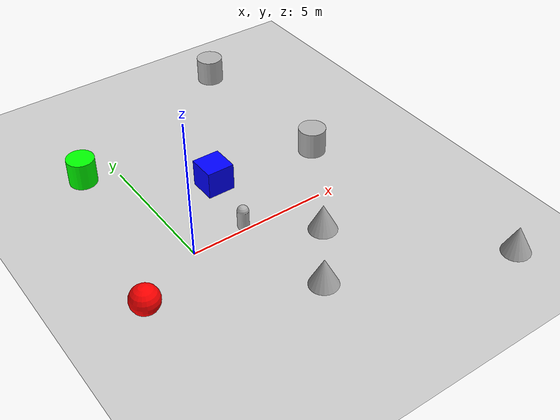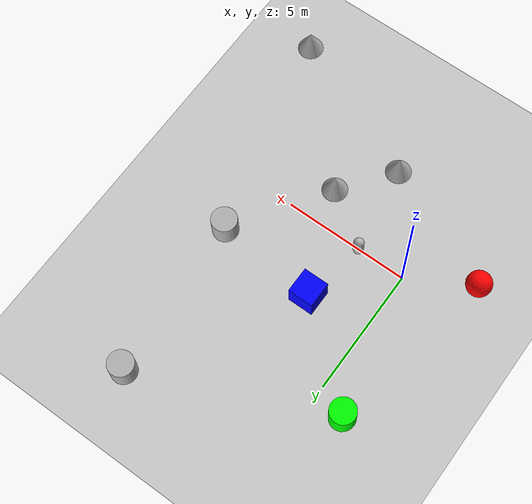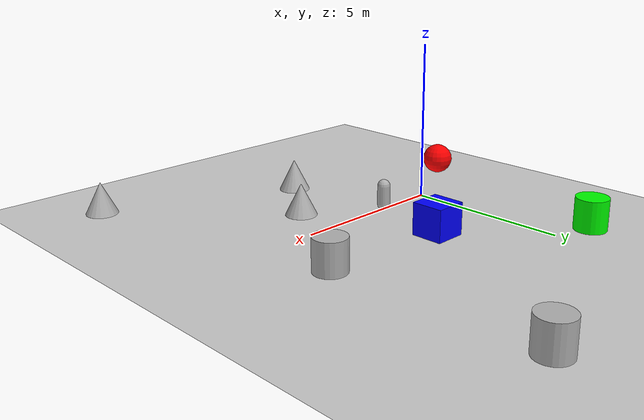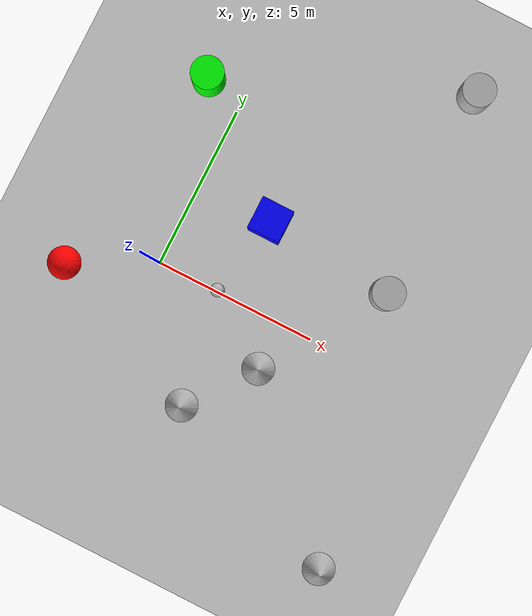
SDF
<sdf version='1.10'>
  <world name='empty'>
    <physics name='1ms' type='ignored'>
      <max_step_size>0.001</max_step_size>
      <real_time_factor>1</real_time_factor>
      <real_time_update_rate>1000</real_time_update_rate>
    </physics>
    <plugin name='gz::sim::systems::Physics' filename='gz-sim-physics-system'/>
    <plugin name='gz::sim::systems::UserCommands' filename='gz-sim-user-commands-system'/>
    <plugin name='gz::sim::systems::SceneBroadcaster' filename='gz-sim-scene-broadcaster-system'/>
    <plugin name='gz::sim::systems::Contact' filename='gz-sim-contact-system'/>
    <gravity>0 0 -9.8000000000000007</gravity>
    <magnetic_field>5.5644999999999998e-06 2.2875799999999999e-05 -4.2388400000000002e-05</magnetic_field>
    <atmosphere type='adiabatic'/>
    <scene>
      <ambient>0.400000006 0.400000006 0.400000006 1</ambient>
      <background>0.699999988 0.699999988 0.699999988 1</background>
      <shadows>true</shadows>
    </scene>
    <model name='ground_plane'>
      <static>true</static>
      <link name='link'>
        <collision name='collision'>
          <geometry>
            <plane>
              <normal>0 0 1</normal>
              <size>100 100</size>
            </plane>
          </geometry>
          <surface>
            <friction>
              <ode/>
            </friction>
            <bounce/>
            <contact/>
          </surface>
        </collision>
        <visual name='visual'>
          <geometry>
            <plane>
              <normal>0 0 1</normal>
              <size>100 100</size>
            </plane>
          </geometry>
          <material>
            <ambient>0.800000012 0.800000012 0.800000012 1</ambient>
            <diffuse>0.800000012 0.800000012 0.800000012 1</diffuse>
            <specular>0.800000012 0.800000012 0.800000012 1</specular>
          </material>
        </visual>
        <pose>0 0 0 0 0 0</pose>
        <inertial>
          <pose>0 0 0 0 0 0</pose>
          <mass>1</mass>
          <inertia>
            <ixx>1</ixx>
            <ixy>0</ixy>
            <ixz>0</ixz>
            <iyy>1</iyy>
            <iyz>0</iyz>
            <izz>1</izz>
          </inertia>
        </inertial>
        <enable_wind>false</enable_wind>
      </link>
      <pose>0 0 0 0 0 0</pose>
      <self_collide>false</self_collide>
    </model>
    <model name='box'>
      <pose>2.3746472880000624 2.5520127282460794 0.49999999980497606 1.0048033485058014e-21 -2.4640853465547739e-21 -3.9210766489770922e-22</pose>
      <link name='box_link'>
        <inertial>
          <inertia>
            <ixx>0.16666</ixx>
            <ixy>0</ixy>
            <ixz>0</ixz>
            <iyy>0.16666</iyy>
            <iyz>0</iyz>
            <izz>0.16666</izz>
          </inertia>
          <mass>1</mass>
          <pose>0 0 0 0 0 0</pose>
        </inertial>
        <collision name='box_collision'>
          <geometry>
            <box>
              <size>1 1 1</size>
            </box>
          </geometry>
          <surface>
            <friction>
              <ode/>
            </friction>
            <bounce/>
            <contact/>
          </surface>
        </collision>
        <visual name='box_visual'>
          <geometry>
            <box>
              <size>1 1 1</size>
            </box>
          </geometry>
          <material>
            <ambient>0 0 1 1</ambient>
            <diffuse>0 0 1 1</diffuse>
            <specular>1 1 1 1</specular>
          </material>
        </visual>
        <pose>0 0 0 0 0 0</pose>
        <enable_wind>false</enable_wind>
      </link>
      <static>false</static>
      <self_collide>false</self_collide>
    </model>
    <model name='sphere'>
      <pose>-2.4239743832122982 -1.2732651850426644 0.49999999980498194 0 0 0</pose>
      <link name='sphere_link'>
        <inertial>
          <inertia>
            <ixx>0.10000000000000001</ixx>
            <ixy>0</ixy>
            <ixz>0</ixz>
            <iyy>0.10000000000000001</iyy>
            <iyz>0</iyz>
            <izz>0.10000000000000001</izz>
          </inertia>
          <mass>1</mass>
          <pose>0 0 0 0 0 0</pose>
        </inertial>
        <collision name='sphere_collision'>
          <geometry>
            <sphere>
              <radius>0.5</radius>
            </sphere>
          </geometry>
          <surface>
            <friction>
              <ode/>
            </friction>
            <bounce/>
            <contact/>
          </surface>
        </collision>
        <visual name='sphere_visual'>
          <geometry>
            <sphere>
              <radius>0.5</radius>
            </sphere>
          </geometry>
          <material>
            <ambient>1 0 0 1</ambient>
            <diffuse>1 0 0 1</diffuse>
            <specular>1 1 1 1</specular>
          </material>
        </visual>
        <pose>0 0 0 0 0 0</pose>
        <enable_wind>false</enable_wind>
      </link>
      <static>false</static>
      <self_collide>false</self_collide>
    </model>
    <model name='cone'>
      <pose>4.0196614380365148 -1.4661534636176385 0.49999999992120586 2.2548609729036461e-12 -8.4123610003777442e-10 1.6328268967902902e-17</pose>
      <link name='cone_link'>
        <inertial>
          <inertia>
            <ixx>0.074999999999999997</ixx>
            <ixy>0</ixy>
            <ixz>0</ixz>
            <iyy>0.074999999999999997</iyy>
            <iyz>0</iyz>
            <izz>0.074999999999999997</izz>
          </inertia>
          <mass>1</mass>
          <pose>0 0 0 0 0 0</pose>
        </inertial>
        <collision name='cone_collision'>
          <geometry>
            <cone>
              <radius>0.5</radius>
              <length>1</length>
            </cone>
          </geometry>
          <surface>
            <friction>
              <ode/>
            </friction>
            <bounce/>
            <contact/>
          </surface>
        </collision>
        <visual name='cone_visual'>
          <geometry>
            <cone>
              <radius>0.5</radius>
              <length>1</length>
            </cone>
          </geometry>
          <material>
            <ambient>0.300000012 0.300000012 0.300000012 1</ambient>
            <diffuse>0.699999988 0.699999988 0.699999988 1</diffuse>
            <specular>1 1 1 1</specular>
          </material>
        </visual>
        <pose>0 0 0 0 0 0</pose>
        <enable_wind>false</enable_wind>
      </link>
      <static>false</static>
      <self_collide>false</self_collide>
    </model>
    <model name='cylinder'>
      <pose>-1.1715747332602389 5.4726880082503273 0.49999943207967634 -1.7794603002036371e-19 6.2534406298204228e-19 -6.0281473122715449e-21</pose>
      <link name='cylinder_link'>
        <inertial>
          <inertia>
            <ixx>0.14580000000000001</ixx>
            <ixy>0</ixy>
            <ixz>0</ixz>
            <iyy>0.14580000000000001</iyy>
            <iyz>0</iyz>
            <izz>0.125</izz>
          </inertia>
          <mass>1</mass>
          <pose>0 0 0 0 0 0</pose>
        </inertial>
        <collision name='cylinder_collision'>
          <geometry>
            <cylinder>
              <radius>0.5</radius>
              <length>1</length>
            </cylinder>
          </geometry>
          <surface>
            <friction>
              <ode/>
            </friction>
            <bounce/>
            <contact/>
          </surface>
        </collision>
        <visual name='cylinder_visual'>
          <geometry>
            <cylinder>
              <radius>0.5</radius>
              <length>1</length>
            </cylinder>
          </geometry>
          <material>
            <ambient>0 1 0 1</ambient>
            <diffuse>0 1 0 1</diffuse>
            <specular>1 1 1 1</specular>
          </material>
        </visual>
        <pose>0 0 0 0 0 0</pose>
        <enable_wind>false</enable_wind>
      </link>
      <static>false</static>
      <self_collide>false</self_collide>
    </model>
    <model name='cone_0'>
      <pose>2.4971681853694818 -3.4680923304422491 0.49999999992120586 2.254860979095879e-12 -8.4123610002770133e-10 1.6326767248231786e-17</pose>
      <link name='cone_link'>
        <inertial>
          <inertia>
            <ixx>0.074999999999999997</ixx>
            <ixy>0</ixy>
            <ixz>0</ixz>
            <iyy>0.074999999999999997</iyy>
            <iyz>0</iyz>
            <izz>0.074999999999999997</izz>
          </inertia>
          <mass>1</mass>
          <pose>0 0 0 0 0 0</pose>
        </inertial>
        <collision name='cone_collision'>
          <geometry>
            <cone>
              <radius>0.5</radius>
              <length>1</length>
            </cone>
          </geometry>
          <surface>
            <friction>
              <ode/>
            </friction>
            <bounce/>
            <contact/>
          </surface>
        </collision>
        <visual name='cone_visual'>
          <geometry>
            <cone>
              <radius>0.5</radius>
              <length>1</length>
            </cone>
          </geometry>
          <material>
            <ambient>0.300000012 0.300000012 0.300000012 1</ambient>
            <diffuse>0.699999988 0.699999988 0.699999988 1</diffuse>
            <specular>1 1 1 1</specular>
          </material>
        </visual>
        <pose>0 0 0 0 0 0</pose>
        <enable_wind>false</enable_wind>
      </link>
      <static>false</static>
      <self_collide>false</self_collide>
    </model>
    <model name='capsule'>
      <pose>1.9146063851341646 0.050714887617700093 0.49999999020000274 0 0 0</pose>
      <link name='capsule_link'>
        <inertial>
          <inertia>
            <ixx>0.074153999999999998</ixx>
            <ixy>0</ixy>
            <ixz>0</ixz>
            <iyy>0.074153999999999998</iyy>
            <iyz>0</iyz>
            <izz>0.018769000000000001</izz>
          </inertia>
          <mass>1</mass>
          <pose>0 0 0 0 0 0</pose>
        </inertial>
        <collision name='capsule_collision'>
          <geometry>
            <capsule>
              <radius>0.20000000000000001</radius>
              <length>0.59999999999999998</length>
            </capsule>
          </geometry>
          <surface>
            <friction>
              <ode/>
            </friction>
            <bounce/>
            <contact/>
          </surface>
        </collision>
        <visual name='capsule_visual'>
          <geometry>
            <capsule>
              <radius>0.20000000000000001</radius>
              <length>0.59999999999999998</length>
            </capsule>
          </geometry>
          <material>
            <ambient>0.300000012 0.300000012 0.300000012 1</ambient>
            <diffuse>0.699999988 0.699999988 0.699999988 1</diffuse>
            <specular>1 1 1 1</specular>
          </material>
        </visual>
        <pose>0 0 0 0 0 0</pose>
        <enable_wind>false</enable_wind>
      </link>
      <static>false</static>
      <self_collide>false</self_collide>
    </model>
    <model name='cylinder_0'>
      <pose>6.3694213085697573 2.2102483620514861 0.49999942638036005 3.0857583778038498e-19 3.7139836222223398e-19 -6.141993237134564e-21</pose>
      <link name='cylinder_link'>
        <inertial>
          <inertia>
            <ixx>0.14580000000000001</ixx>
            <ixy>0</ixy>
            <ixz>0</ixz>
            <iyy>0.14580000000000001</iyy>
            <iyz>0</iyz>
            <izz>0.125</izz>
          </inertia>
          <mass>1</mass>
          <pose>0 0 0 0 0 0</pose>
        </inertial>
        <collision name='cylinder_collision'>
          <geometry>
            <cylinder>
              <radius>0.5</radius>
              <length>1</length>
            </cylinder>
          </geometry>
          <surface>
            <friction>
              <ode/>
            </friction>
            <bounce/>
            <contact/>
          </surface>
        </collision>
        <visual name='cylinder_visual'>
          <geometry>
            <cylinder>
              <radius>0.5</radius>
              <length>1</length>
            </cylinder>
          </geometry>
          <material>
            <ambient>0.300000012 0.300000012 0.300000012 1</ambient>
            <diffuse>0.699999988 0.699999988 0.699999988 1</diffuse>
            <specular>1 1 1 1</specular>
          </material>
        </visual>
        <pose>0 0 0 0 0 0</pose>
        <enable_wind>false</enable_wind>
      </link>
      <static>false</static>
      <self_collide>false</self_collide>
    </model>
    <model name='cone_1'>
      <pose>8.3155628271274704 -5.9257334010455489 0.49999999993296756 5.2551375645788325e-17 -7.7132841038021451e-10 2.5069439130256327e-23</pose>
      <link name='cone_link'>
        <inertial>
          <inertia>
            <ixx>0.074999999999999997</ixx>
            <ixy>0</ixy>
            <ixz>0</ixz>
            <iyy>0.074999999999999997</iyy>
            <iyz>0</iyz>
            <izz>0.074999999999999997</izz>
          </inertia>
          <mass>1</mass>
          <pose>0 0 0 0 0 0</pose>
        </inertial>
        <collision name='cone_collision'>
          <geometry>
            <cone>
              <radius>0.5</radius>
              <length>1</length>
            </cone>
          </geometry>
          <surface>
            <friction>
              <ode/>
            </friction>
            <bounce/>
            <contact/>
          </surface>
        </collision>
        <visual name='cone_visual'>
          <geometry>
            <cone>
              <radius>0.5</radius>
              <length>1</length>
            </cone>
          </geometry>
          <material>
            <ambient>0.300000012 0.300000012 0.300000012 1</ambient>
            <diffuse>0.699999988 0.699999988 0.699999988 1</diffuse>
            <specular>1 1 1 1</specular>
          </material>
        </visual>
        <pose>0 0 0 0 0 0</pose>
        <enable_wind>false</enable_wind>
      </link>
      <static>false</static>
      <self_collide>false</self_collide>
    </model>
    <model name='cylinder_1'>
      <pose>6.018741671044058 8.5857641141524574 0.49999942638036005 1.8063353842553419e-20 2.1011841775566174e-19 -1.8555926059346434e-20</pose>
      <link name='cylinder_link'>
        <inertial>
          <inertia>
            <ixx>0.14580000000000001</ixx>
            <ixy>0</ixy>
            <ixz>0</ixz>
            <iyy>0.14580000000000001</iyy>
            <iyz>0</iyz>
            <izz>0.125</izz>
          </inertia>
          <mass>1</mass>
          <pose>0 0 0 0 0 0</pose>
        </inertial>
        <collision name='cylinder_collision'>
          <geometry>
            <cylinder>
              <radius>0.5</radius>
              <length>1</length>
            </cylinder>
          </geometry>
          <surface>
            <friction>
              <ode/>
            </friction>
            <bounce/>
            <contact/>
          </surface>
        </collision>
        <visual name='cylinder_visual'>
          <geometry>
            <cylinder>
              <radius>0.5</radius>
              <length>1</length>
            </cylinder>
          </geometry>
          <material>
            <ambient>0.300000012 0.300000012 0.300000012 1</ambient>
            <diffuse>0.699999988 0.699999988 0.699999988 1</diffuse>
            <specular>1 1 1 1</specular>
          </material>
        </visual>
        <pose>0 0 0 0 0 0</pose>
        <enable_wind>false</enable_wind>
      </link>
      <static>false</static>
      <self_collide>false</self_collide>
    </model>
    <light name='sun' type='directional'>
      <pose>0 0 10 0 0 0</pose>
      <cast_shadows>true</cast_shadows>
      <intensity>1</intensity>
      <direction>-0.5 0.10000000000000001 -0.90000000000000002</direction>
      <diffuse>0.800000012 0.800000012 0.800000012 1</diffuse>
      <specular>0.200000003 0.200000003 0.200000003 1</specular>
      <attenuation>
        <range>1000</range>
        <linear>0.0099999997764825821</linear>
        <constant>0.89999997615814209</constant>
        <quadratic>0.0010000000474974513</quadratic>
      </attenuation>
      <spot>
        <inner_angle>0</inner_angle>
        <outer_angle>0</outer_angle>
        <falloff>0</falloff>
      </spot>
    </light>
  </world>
</sdf>
